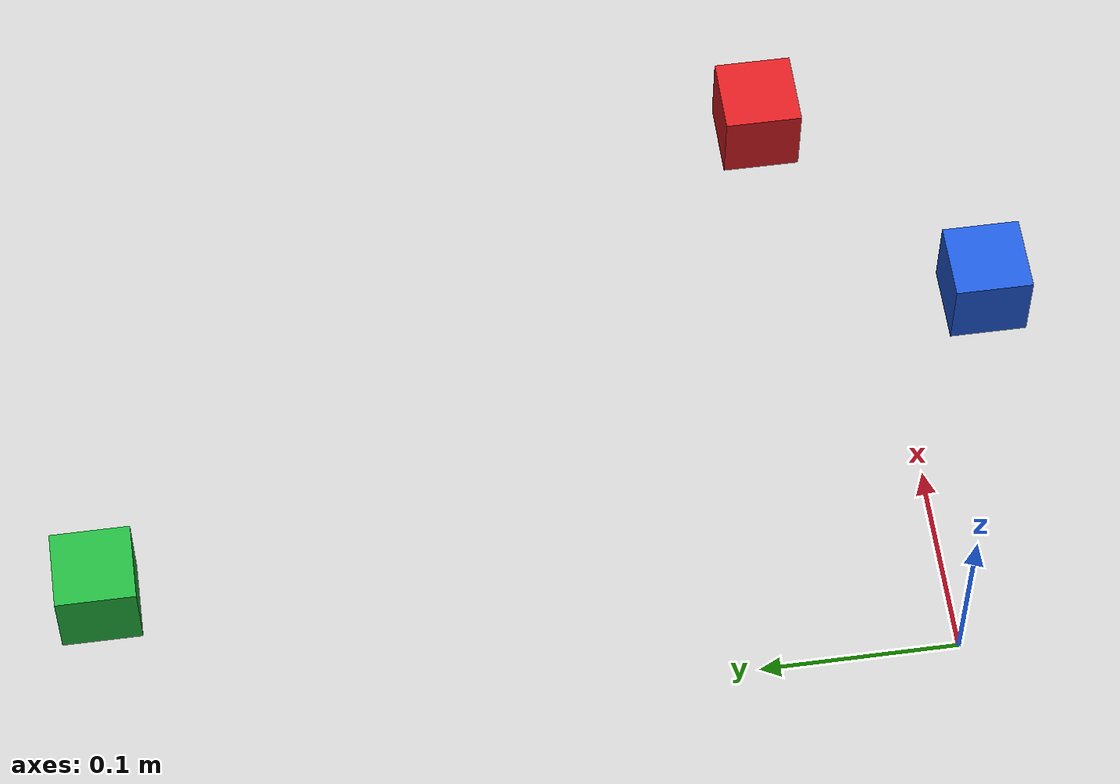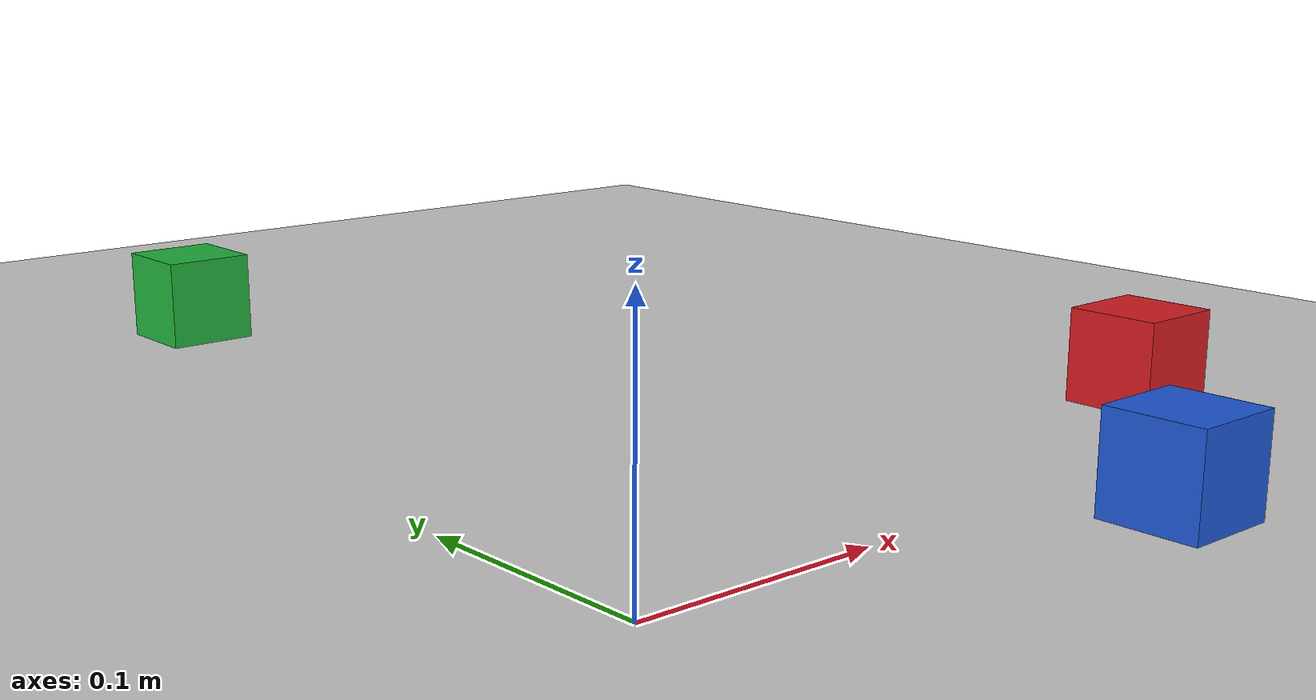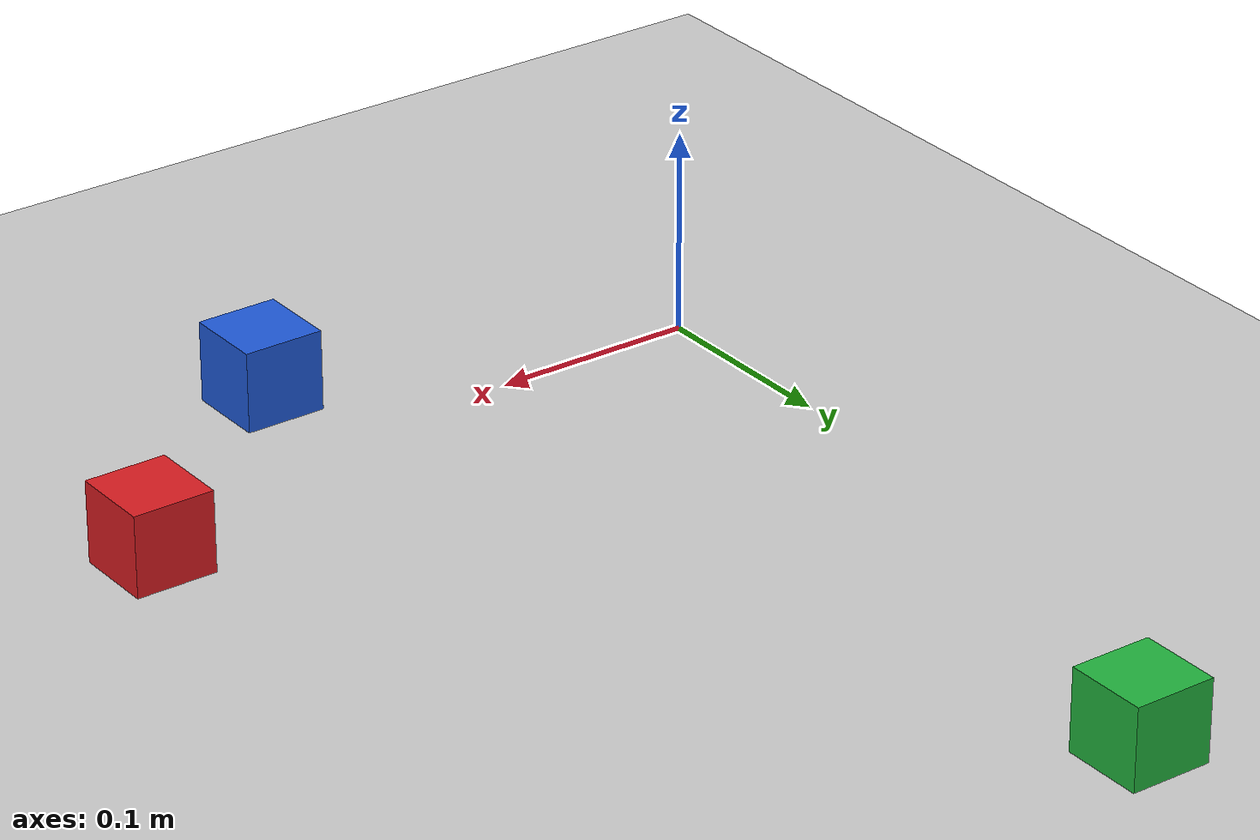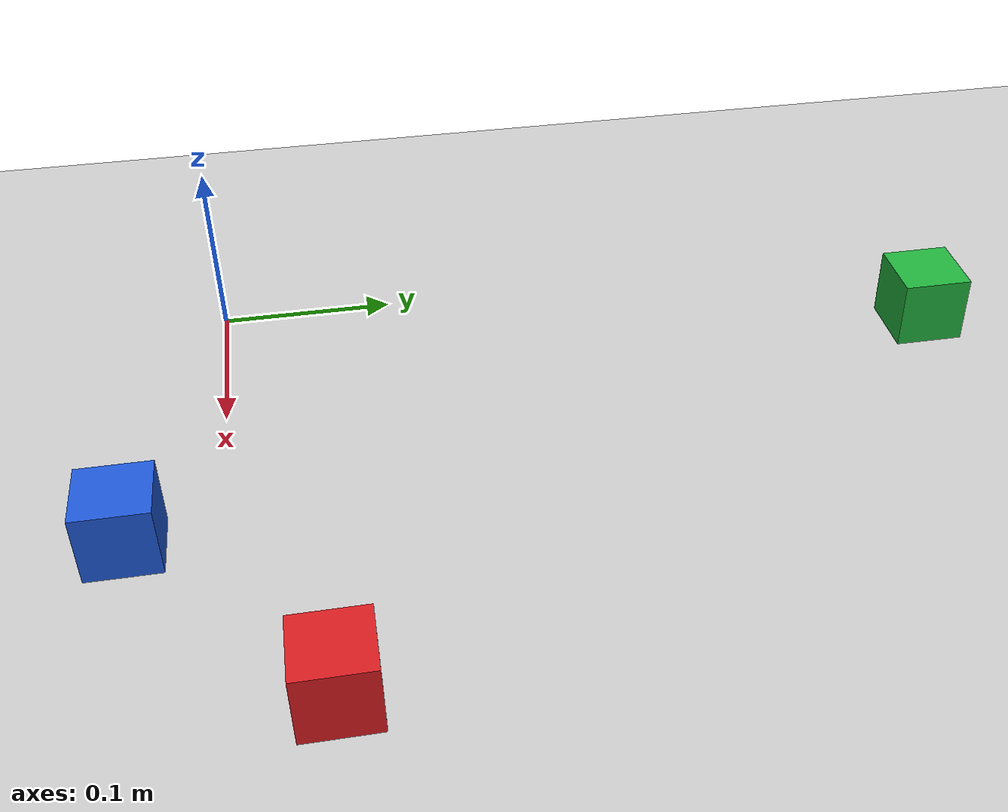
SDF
<?xml version="1.0" ?>
<sdf version="1.6">
  <world name="empty">
    <physics name="1ms" type="ignored">
      <max_step_size>0.001</max_step_size>
      <real_time_factor>1.0</real_time_factor>
    </physics>
    <plugin
      filename="ignition-gazebo-physics-system"
      name="gz::sim::systems::Physics">
    </plugin>
    <plugin
      filename="ignition-gazebo-user-commands-system"
      name="gz::sim::systems::UserCommands">
    </plugin>
    <plugin
      filename="ignition-gazebo-scene-broadcaster-system"
      name="gz::sim::systems::SceneBroadcaster">
    </plugin>
    <plugin
      filename="ignition-gazebo-contact-system"
      name="gz::sim::systems::Contact">
    </plugin>
    <plugin
      filename="ignition-gazebo-sensors-system"
      name="gz::sim::systems::Sensors">
      <render_engine>ogre2</render_engine>
    </plugin>

    <light type="directional" name="sun">
      <cast_shadows>true</cast_shadows>
      <pose>0 0 10 0 0 0</pose>
      <diffuse>0.8 0.8 0.8 1</diffuse>
      <specular>0.2 0.2 0.2 1</specular>
      <attenuation>
        <range>1000</range>
        <constant>0.9</constant>
        <linear>0.01</linear>
        <quadratic>0.001</quadratic>
      </attenuation>
      <direction>-0.5 0.1 -0.9</direction>
    </light>

    <model name="ground_plane">
      <static>true</static>
      <link name="link">
        <collision name="collision">
          <geometry>
            <plane>
              <normal>0 0 1</normal>
              <size>100 100</size>
            </plane>
          </geometry>
        </collision>
        <visual name="visual">
          <geometry>
            <plane>
              <normal>0 0 1</normal>
              <size>100 100</size>
            </plane>
          </geometry>
          <material>
            <ambient>0.8 0.8 0.8 1</ambient>
            <diffuse>0.8 0.8 0.8 1</diffuse>
            <specular>0.8 0.8 0.8 1</specular>
          </material>
        </visual>
      </link>
    </model>

    <model name="cube_red">
      <static>true</static>
      <pose>0.32 0.05 0.02 0 0 0</pose>
      <link name="link">
        <collision name="collision">
          <geometry><box><size>0.04 0.04 0.04</size></box></geometry>
        </collision>
        <visual name="visual">
          <geometry><box><size>0.04 0.04 0.04</size></box></geometry>
          <material>
            <ambient>0.85 0.11 0.13 1</ambient>
            <diffuse>0.85 0.11 0.13 1</diffuse>
            <specular>0.85 0.11 0.13 1</specular>
          </material>
        </visual>
      </link>
    </model>

    <model name="cube_green">
      <static>true</static>
      <pose>0.08 0.42 0.02 0 0 0</pose>
      <link name="link">
        <collision name="collision">
          <geometry><box><size>0.04 0.04 0.04</size></box></geometry>
        </collision>
        <visual name="visual">
          <geometry><box><size>0.04 0.04 0.04</size></box></geometry>
          <material>
            <ambient>0.13 0.70 0.24 1</ambient>
            <diffuse>0.13 0.70 0.24 1</diffuse>
            <specular>0.13 0.70 0.24 1</specular>
          </material>
        </visual>
      </link>
    </model>

    <model name="cube_blue">
      <static>true</static>
      <pose>0.20 -0.05 0.02 0 0 0</pose>
      <link name="link">
        <collision name="collision">
          <geometry><box><size>0.04 0.04 0.04</size></box></geometry>
        </collision>
        <visual name="visual">
          <geometry><box><size>0.04 0.04 0.04</size></box></geometry>
          <material>
            <ambient>0.12 0.35 0.85 1</ambient>
            <diffuse>0.12 0.35 0.85 1</diffuse>
            <specular>0.12 0.35 0.85 1</specular>
          </material>
        </visual>
      </link>
    </model>

  </world>
</sdf>
